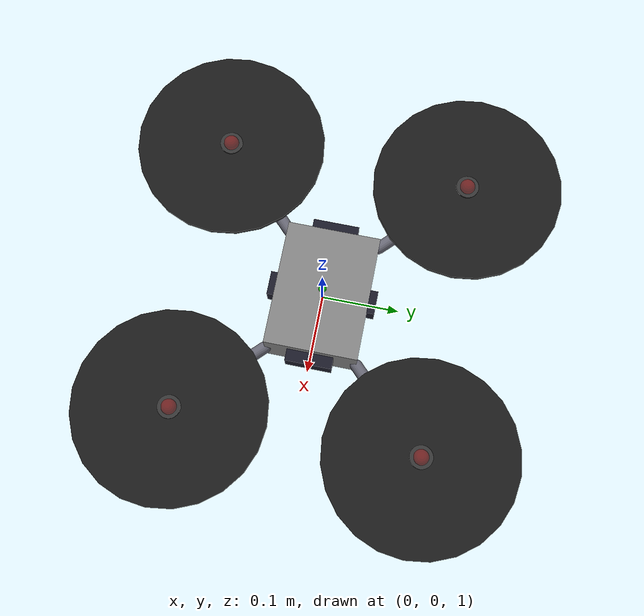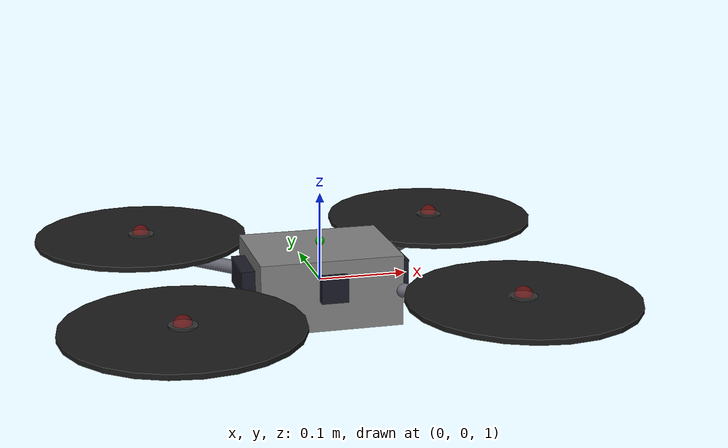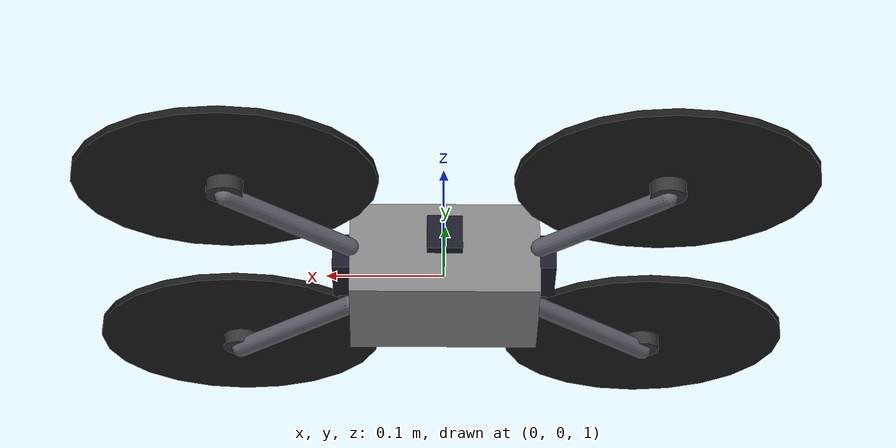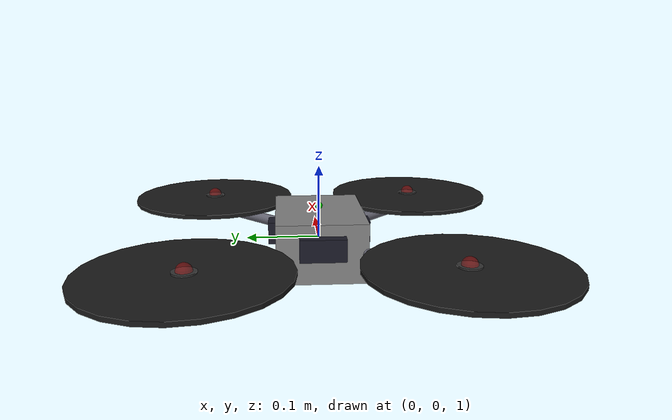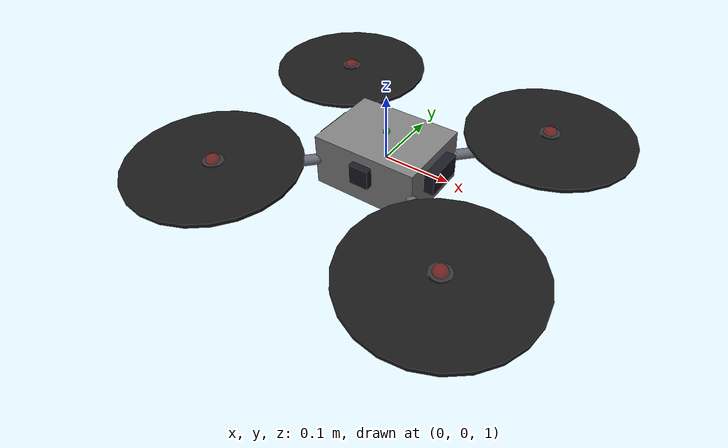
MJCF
<mujoco model="skydio_x2">
  <compiler angle="radian" autolimits="true"/>

  <option timestep="0.001" integrator="implicitfast">
    <flag warmstart="enable"/>
  </option>

  <default>
    <default class="skydio_x2">
      <geom rgba="0.3 0.3 0.35 1" material="body_mat"/>
      <joint armature="0.001" damping="0.01"/>
      <site size="0.01" rgba="1 0 0 0.3"/>
    </default>
    <default class="propeller">
      <geom type="cylinder" size="0.125 0.005" rgba="0.1 0.1 0.1 1"/>
      <joint type="hinge" axis="0 0 1" damping="0.001"/>
    </default>
    <default class="arm">
      <geom type="capsule" size="0.008" rgba="0.4 0.4 0.45 1"/>
    </default>
    <default class="visual">
      <geom contype="0" conaffinity="0" group="2"/>
    </default>
    <default class="collision">
      <geom group="3"/>
    </default>
  </default>

  <asset>
    <material name="body_mat" specular="0.5" shininess="0.25" rgba="0.3 0.3 0.35 1"/>
    <material name="prop_mat" specular="0.3" shininess="0.1" rgba="0.1 0.1 0.1 1"/>
    <material name="arm_mat" specular="0.4" shininess="0.2" rgba="0.4 0.4 0.45 1"/>
    <material name="camera_mat" specular="0.8" shininess="0.5" rgba="0.1 0.1 0.15 1"/>
    <material name="led_mat" emission="1.0" rgba="0.0 0.8 0.0 1"/>
  </asset>

  <worldbody>
    <light directional="true" diffuse=".8 .8 .8" specular=".2 .2 .2" pos="0 0 5" dir="0 0 -1"/>
    <light directional="true" diffuse=".3 .3 .3" specular=".1 .1 .1" pos="5 0 3" dir="-1 0 -0.5"/>

    <body name="skydio_x2" pos="0 0 1.0" childclass="skydio_x2">
      <!-- Free joint for 6-DOF movement -->
      <freejoint name="root"/>

      <!-- Central fuselage -->
      <inertial mass="1.1" pos="0 0 0" diaginertia="0.012 0.012 0.022"/>
      <geom name="fuselage" type="box" size="0.08 0.06 0.04" class="visual"/>
      <geom name="fuselage_collision" type="box" size="0.08 0.06 0.04" class="collision"/>

      <!-- Front camera housing -->
      <geom name="front_camera" type="box" pos="0.075 0 0.01" size="0.02 0.03 0.015" rgba="0.1 0.1 0.15 1" class="visual"/>
      <geom name="rear_camera" type="box" pos="-0.075 0 0.01" size="0.02 0.03 0.015" rgba="0.1 0.1 0.15 1" class="visual"/>
      <geom name="left_camera" type="box" pos="0 0.055 0.01" size="0.015 0.015 0.015" rgba="0.1 0.1 0.15 1" class="visual"/>
      <geom name="right_camera" type="box" pos="0 -0.055 0.01" size="0.015 0.015 0.015" rgba="0.1 0.1 0.15 1" class="visual"/>

      <!-- Status LED -->
      <geom name="status_led" type="sphere" pos="0 0 0.045" size="0.005" material="led_mat" class="visual"/>

      <!-- Front-left arm -->
      <body name="arm_fl" pos="0.08 0.06 0">
        <geom name="arm_fl_geom" fromto="0 0 0 0.10 0.10 0" class="arm"/>
        <body name="motor_fl" pos="0.10 0.10 0.01">
          <geom name="motor_fl_housing" type="cylinder" size="0.015 0.01" rgba="0.2 0.2 0.2 1" class="visual"/>
          <joint name="motor_fl_joint" class="propeller"/>
          <geom name="prop_fl" type="cylinder" size="0.125 0.003" pos="0 0 0.005" material="prop_mat" class="visual"/>
          <geom name="prop_fl_collision" type="cylinder" size="0.125 0.003" pos="0 0 0.005" class="collision"/>
          <site name="thrust_fl" pos="0 0 0.01" size="0.01"/>
        </body>
      </body>

      <!-- Front-right arm -->
      <body name="arm_fr" pos="0.08 -0.06 0">
        <geom name="arm_fr_geom" fromto="0 0 0 0.10 -0.10 0" class="arm"/>
        <body name="motor_fr" pos="0.10 -0.10 0.01">
          <geom name="motor_fr_housing" type="cylinder" size="0.015 0.01" rgba="0.2 0.2 0.2 1" class="visual"/>
          <joint name="motor_fr_joint" class="propeller"/>
          <geom name="prop_fr" type="cylinder" size="0.125 0.003" pos="0 0 0.005" material="prop_mat" class="visual"/>
          <geom name="prop_fr_collision" type="cylinder" size="0.125 0.003" pos="0 0 0.005" class="collision"/>
          <site name="thrust_fr" pos="0 0 0.01" size="0.01"/>
        </body>
      </body>

      <!-- Rear-left arm -->
      <body name="arm_rl" pos="-0.08 0.06 0">
        <geom name="arm_rl_geom" fromto="0 0 0 -0.10 0.10 0" class="arm"/>
        <body name="motor_rl" pos="-0.10 0.10 0.01">
          <geom name="motor_rl_housing" type="cylinder" size="0.015 0.01" rgba="0.2 0.2 0.2 1" class="visual"/>
          <joint name="motor_rl_joint" class="propeller"/>
          <geom name="prop_rl" type="cylinder" size="0.125 0.003" pos="0 0 0.005" material="prop_mat" class="visual"/>
          <geom name="prop_rl_collision" type="cylinder" size="0.125 0.003" pos="0 0 0.005" class="collision"/>
          <site name="thrust_rl" pos="0 0 0.01" size="0.01"/>
        </body>
      </body>

      <!-- Rear-right arm -->
      <body name="arm_rr" pos="-0.08 -0.06 0">
        <geom name="arm_rr_geom" fromto="0 0 0 -0.10 -0.10 0" class="arm"/>
        <body name="motor_rr" pos="-0.10 -0.10 0.01">
          <geom name="motor_rr_housing" type="cylinder" size="0.015 0.01" rgba="0.2 0.2 0.2 1" class="visual"/>
          <joint name="motor_rr_joint" class="propeller"/>
          <geom name="prop_rr" type="cylinder" size="0.125 0.003" pos="0 0 0.005" material="prop_mat" class="visual"/>
          <geom name="prop_rr_collision" type="cylinder" size="0.125 0.003" pos="0 0 0.005" class="collision"/>
          <site name="thrust_rr" pos="0 0 0.01" size="0.01"/>
        </body>
      </body>

      <!-- IMU site -->
      <site name="imu" pos="0 0 0" size="0.005" rgba="1 0 0 0.5"/>
    </body>
  </worldbody>

  <actuator>
    <!-- Motor actuators: thrust control -->
    <motor name="motor_fl" joint="motor_fl_joint" gear="0 0 1 0 0 0" ctrllimited="true" ctrlrange="0 15"/>
    <motor name="motor_fr" joint="motor_fr_joint" gear="0 0 1 0 0 0" ctrllimited="true" ctrlrange="0 15"/>
    <motor name="motor_rl" joint="motor_rl_joint" gear="0 0 1 0 0 0" ctrllimited="true" ctrlrange="0 15"/>
    <motor name="motor_rr" joint="motor_rr_joint" gear="0 0 1 0 0 0" ctrllimited="true" ctrlrange="0 15"/>
  </actuator>

  <sensor>
    <!-- IMU sensors -->
    <accelerometer name="imu_accel" site="imu"/>
    <gyro name="imu_gyro" site="imu"/>
    <framequat name="imu_quat" objtype="site" objname="imu"/>

    <!-- Motor velocity sensors -->
    <jointvel name="motor_fl_vel" joint="motor_fl_joint"/>
    <jointvel name="motor_fr_vel" joint="motor_fr_joint"/>
    <jointvel name="motor_rl_vel" joint="motor_rl_joint"/>
    <jointvel name="motor_rr_vel" joint="motor_rr_joint"/>
  </sensor>

  <keyframe>
    <key name="hover" qpos="0 0 1.0 1 0 0 0 0 0 0 0" ctrl="3.25 3.25 3.25 3.25"/>
  </keyframe>
</mujoco>
